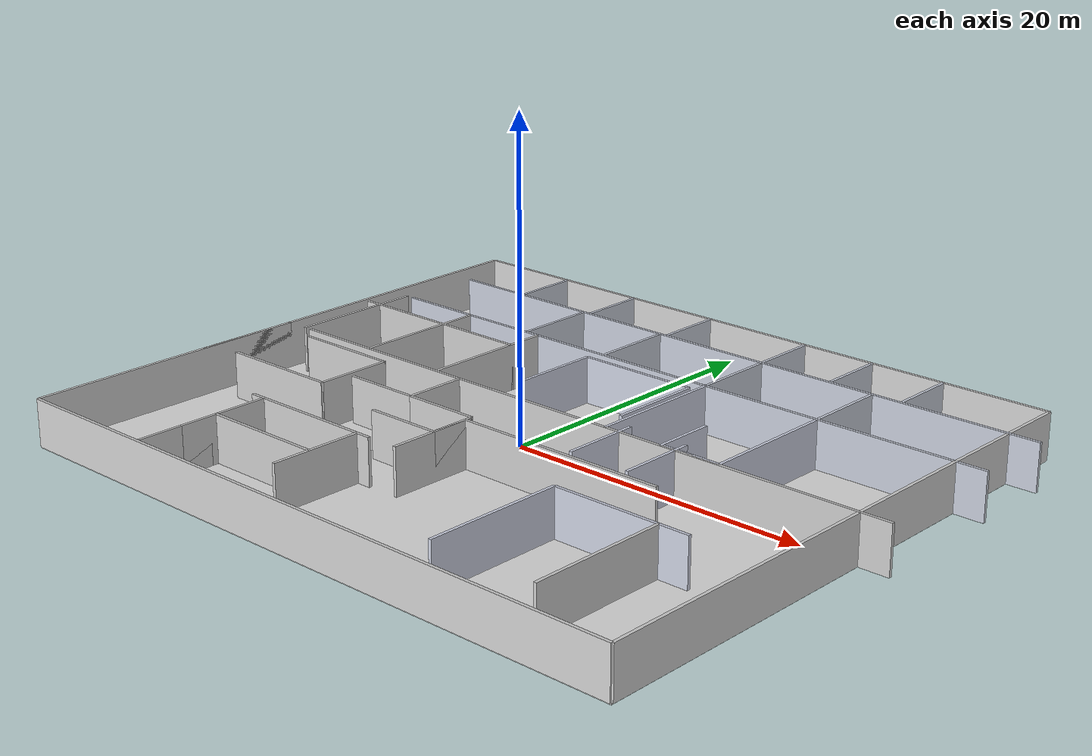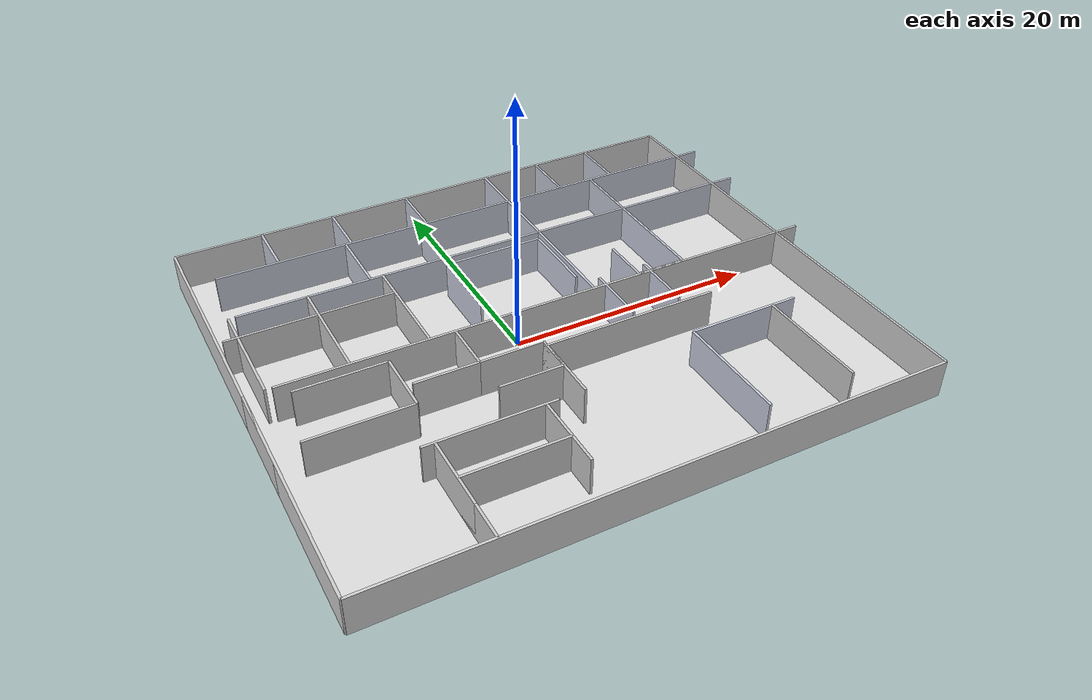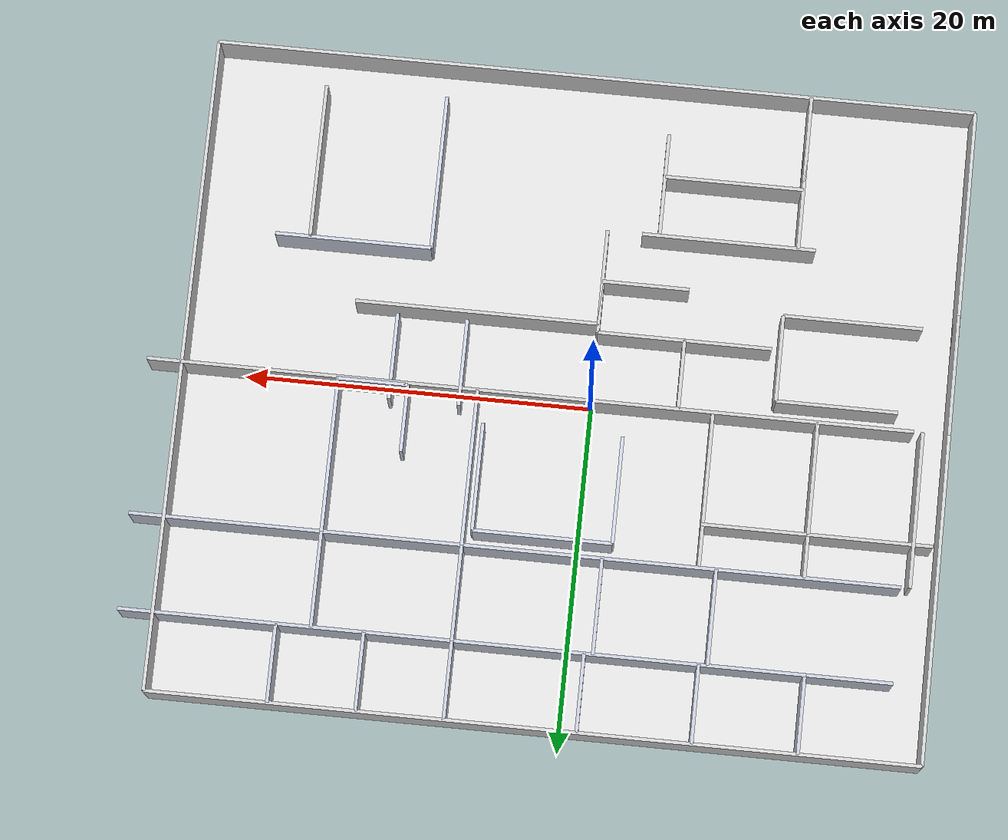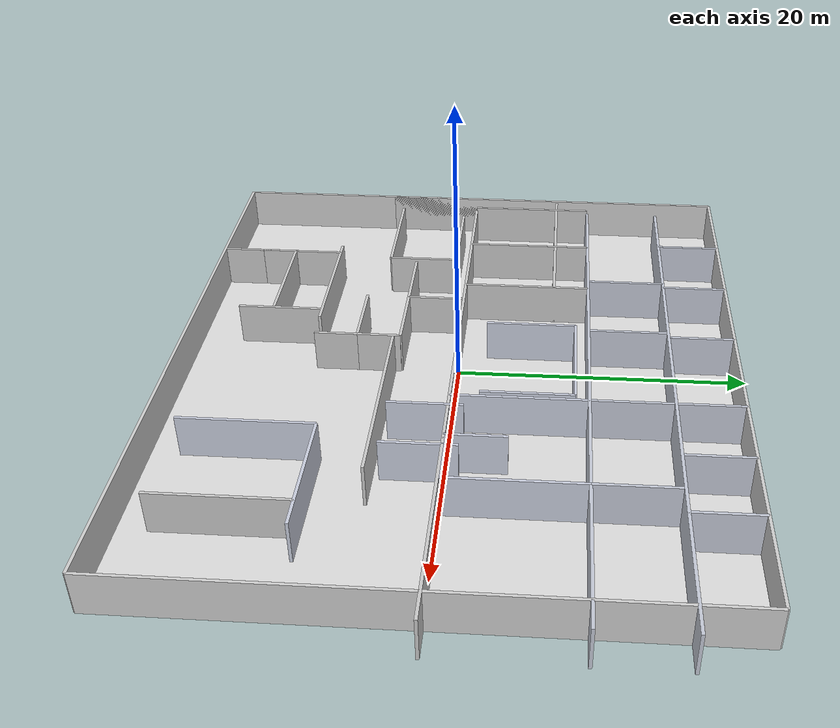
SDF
<?xml version="1.0"?>
<sdf version="1.6">
  <model name="hospital_building">
    <static>true</static>

    <link name="floor">
      <pose>1.5 0 -0.05 0 0 0</pose>
      <collision name="c"><geometry><box><size>44 38 0.1</size></box></geometry></collision>
      <visual name="v">
        <geometry><box><size>44 38 0.1</size></box></geometry>
        <material>
          <ambient>0.88 0.88 0.88 1</ambient>
          <diffuse>0.88 0.88 0.88 1</diffuse>
        </material>
      </visual>
    </link>

    <!-- ================================================================
         OUTER PERIMETER WALLS  (thickness=0.2, height=3.0)
         ================================================================ -->
    <!-- North wall -->
    <link name="wall_north">
      <pose>1.5 19.0 1.5 0 0 0</pose>
      <collision name="c"><geometry><box><size>44 0.2 3.0</size></box></geometry></collision>
      <visual name="v"><geometry><box><size>44 0.2 3.0</size></box></geometry>
        <material><ambient>0.82 0.82 0.82 1</ambient><diffuse>0.82 0.82 0.82 1</diffuse></material></visual>
    </link>
    <!-- South wall -->
    <link name="wall_south">
      <pose>1.5 -19.0 1.5 0 0 0</pose>
      <collision name="c"><geometry><box><size>44 0.2 3.0</size></box></geometry></collision>
      <visual name="v"><geometry><box><size>44 0.2 3.0</size></box></geometry>
        <material><ambient>0.82 0.82 0.82 1</ambient><diffuse>0.82 0.82 0.82 1</diffuse></material></visual>
    </link>
    <!-- East wall -->
    <link name="wall_east">
      <pose>23.5 0 1.5 0 0 0</pose>
      <collision name="c"><geometry><box><size>0.2 38 3.0</size></box></geometry></collision>
      <visual name="v"><geometry><box><size>0.2 38 3.0</size></box></geometry>
        <material><ambient>0.82 0.82 0.82 1</ambient><diffuse>0.82 0.82 0.82 1</diffuse></material></visual>
    </link>
    <!-- West wall -->
    <link name="wall_west">
      <pose>-20.5 0 1.5 0 0 0</pose>
      <collision name="c"><geometry><box><size>0.2 38 3.0</size></box></geometry></collision>
      <visual name="v"><geometry><box><size>0.2 38 3.0</size></box></geometry>
        <material><ambient>0.82 0.82 0.82 1</ambient><diffuse>0.82 0.82 0.82 1</diffuse></material></visual>
    </link>

    <!-- Clean core south wall (corridor between OR zone and mid zone) -->
    <link name="wall_clean_core_south">
      <pose>3.5 9.0 1.5 0 0 0</pose>
      <collision name="c"><geometry><box><size>44 0.2 3.0</size></box></geometry></collision>
      <visual name="v"><geometry><box><size>44 0.2 3.0</size></box></geometry>
        <material><ambient>0.78 0.80 0.85 1</ambient><diffuse>0.78 0.80 0.85 1</diffuse></material></visual>
    </link>

    <!-- Internal wall separating prep/clean core from OR corridor (y=14.5) -->
    <link name="wall_clean_core_internal">
      <pose>3.5 14.5 1.5 0 0 0</pose>
      <collision name="c"><geometry><box><size>44 0.2 3.0</size></box></geometry></collision>
      <visual name="v"><geometry><box><size>44 0.2 3.0</size></box></geometry>
        <material><ambient>0.78 0.80 0.85 1</ambient><diffuse>0.78 0.80 0.85 1</diffuse></material></visual>
    </link>

    <!-- Vertical partitions between OR rooms (x-separators in OR zone) -->
    <!-- Between OR1 and OR2 -->
    <link name="or_sep_1_2">
      <pose>-8.0 11.75 1.5 0 0 0</pose>
      <collision name="c"><geometry><box><size>0.2 5.5 3.0</size></box></geometry></collision>
      <visual name="v"><geometry><box><size>0.2 5.5 3.0</size></box></geometry>
        <material><ambient>0.78 0.80 0.85 1</ambient><diffuse>0.78 0.80 0.85 1</diffuse></material></visual>
    </link>
    <!-- Between OR2 and OR3 -->
    <link name="or_sep_2_3">
      <pose>-1.5 11.75 1.5 0 0 0</pose>
      <collision name="c"><geometry><box><size>0.2 5.5 3.0</size></box></geometry></collision>
      <visual name="v"><geometry><box><size>0.2 5.5 3.0</size></box></geometry>
        <material><ambient>0.78 0.80 0.85 1</ambient><diffuse>0.78 0.80 0.85 1</diffuse></material></visual>
    </link>
    <!-- Between OR3 and Endoscopy -->
    <link name="or_sep_3_endo">
      <pose>6.5 11.75 1.5 0 0 0</pose>
      <collision name="c"><geometry><box><size>0.2 5.5 3.0</size></box></geometry></collision>
      <visual name="v"><geometry><box><size>0.2 5.5 3.0</size></box></geometry>
        <material><ambient>0.78 0.80 0.85 1</ambient><diffuse>0.78 0.80 0.85 1</diffuse></material></visual>
    </link>
    <!-- Equipment storage east separator -->
    <link name="or_equip_sep">
      <pose>14.5 11.75 1.5 0 0 0</pose>
      <collision name="c"><geometry><box><size>0.2 5.5 3.0</size></box></geometry></collision>
      <visual name="v"><geometry><box><size>0.2 5.5 3.0</size></box></geometry>
        <material><ambient>0.78 0.80 0.85 1</ambient><diffuse>0.78 0.80 0.85 1</diffuse></material></visual>
    </link>

    <!-- Clean core north block internal separators (prep/pack, sterilize, storage) -->
    <link name="clean_sep1"><pose>-13.5 16.75 1.5 0 0 0</pose>
      <collision name="c"><geometry><box><size>0.2 4.5 3.0</size></box></geometry></collision>
      <visual name="v"><geometry><box><size>0.2 4.5 3.0</size></box></geometry>
        <material><ambient>0.78 0.80 0.85 1</ambient><diffuse>0.78 0.80 0.85 1</diffuse></material></visual>
    </link>
    <link name="clean_sep2"><pose>-7.5 16.75 1.5 0 0 0</pose>
      <collision name="c"><geometry><box><size>0.2 4.5 3.0</size></box></geometry></collision>
      <visual name="v"><geometry><box><size>0.2 4.5 3.0</size></box></geometry>
        <material><ambient>0.78 0.80 0.85 1</ambient><diffuse>0.78 0.80 0.85 1</diffuse></material></visual>
    </link>
    <link name="clean_sep3"><pose>-1.0 16.75 1.5 0 0 0</pose>
      <collision name="c"><geometry><box><size>0.2 4.5 3.0</size></box></geometry></collision>
      <visual name="v"><geometry><box><size>0.2 4.5 3.0</size></box></geometry>
        <material><ambient>0.78 0.80 0.85 1</ambient><diffuse>0.78 0.80 0.85 1</diffuse></material></visual>
    </link>
    <link name="clean_sep4"><pose>6.5 16.75 1.5 0 0 0</pose>
      <collision name="c"><geometry><box><size>0.2 4.5 3.0</size></box></geometry></collision>
      <visual name="v"><geometry><box><size>0.2 4.5 3.0</size></box></geometry>
        <material><ambient>0.78 0.80 0.85 1</ambient><diffuse>0.78 0.80 0.85 1</diffuse></material></visual>
    </link>
    <link name="clean_sep5"><pose>11.5 16.75 1.5 0 0 0</pose>
      <collision name="c"><geometry><box><size>0.2 4.5 3.0</size></box></geometry></collision>
      <visual name="v"><geometry><box><size>0.2 4.5 3.0</size></box></geometry>
        <material><ambient>0.78 0.80 0.85 1</ambient><diffuse>0.78 0.80 0.85 1</diffuse></material></visual>
    </link>
    <link name="clean_sep6"><pose>16.5 16.75 1.5 0 0 0</pose>
      <collision name="c"><geometry><box><size>0.2 4.5 3.0</size></box></geometry></collision>
      <visual name="v"><geometry><box><size>0.2 4.5 3.0</size></box></geometry>
        <material><ambient>0.78 0.80 0.85 1</ambient><diffuse>0.78 0.80 0.85 1</diffuse></material></visual>
    </link>

    <!-- Mid zone south wall (between mid and admin/waiting) -->
    <link name="wall_mid_south">
      <pose>3.5 0.0 1.5 0 0 0</pose>
      <collision name="c"><geometry><box><size>44 0.2 3.0</size></box></geometry></collision>
      <visual name="v"><geometry><box><size>44 0.2 3.0</size></box></geometry>
        <material><ambient>0.80 0.80 0.80 1</ambient><diffuse>0.80 0.80 0.80 1</diffuse></material></visual>
    </link>

    <!-- Locker/toilet separators west portion (x=-20.5 to x=-5) -->
    <link name="lock_sep1"><pose>-19.0 4.5 1.5 0 0 0</pose>
      <collision name="c"><geometry><box><size>0.2 9.0 3.0</size></box></geometry></collision>
      <visual name="v"><geometry><box><size>0.2 9.0 3.0</size></box></geometry>
        <material><ambient>0.80 0.80 0.80 1</ambient><diffuse>0.80 0.80 0.80 1</diffuse></material></visual>
    </link>
    <link name="lock_sep2"><pose>-13.0 4.5 1.5 0 0 0</pose>
      <collision name="c"><geometry><box><size>0.2 9.0 3.0</size></box></geometry></collision>
      <visual name="v"><geometry><box><size>0.2 9.0 3.0</size></box></geometry>
        <material><ambient>0.80 0.80 0.80 1</ambient><diffuse>0.80 0.80 0.80 1</diffuse></material></visual>
    </link>
    <link name="lock_sep3"><pose>-7.0 4.5 1.5 0 0 0</pose>
      <collision name="c"><geometry><box><size>0.2 9.0 3.0</size></box></geometry></collision>
      <visual name="v"><geometry><box><size>0.2 9.0 3.0</size></box></geometry>
        <material><ambient>0.80 0.80 0.80 1</ambient><diffuse>0.80 0.80 0.80 1</diffuse></material></visual>
    </link>
    <!-- Mid-zone horizontal separator (toilet row) -->
    <link name="lock_horiz"><pose>-13.5 6.5 1.5 0 0 0</pose>
      <collision name="c"><geometry><box><size>13.2 0.2 3.0</size></box></geometry></collision>
      <visual name="v"><geometry><box><size>13.2 0.2 3.0</size></box></geometry>
        <material><ambient>0.80 0.80 0.80 1</ambient><diffuse>0.80 0.80 0.80 1</diffuse></material></visual>
    </link>

    <!-- Pre-op Holding box (center approx x=2, y=5, size 8x6) -->
    <link name="preop_north"><pose>2.0 8.1 1.5 0 0 0</pose>
      <collision name="c"><geometry><box><size>8.0 0.2 3.0</size></box></geometry></collision>
      <visual name="v"><geometry><box><size>8.0 0.2 3.0</size></box></geometry>
        <material><ambient>0.80 0.82 0.88 1</ambient><diffuse>0.80 0.82 0.88 1</diffuse></material></visual>
    </link>
    <link name="preop_west"><pose>-2.0 5.0 1.5 0 0 0</pose>
      <collision name="c"><geometry><box><size>0.2 6.2 3.0</size></box></geometry></collision>
      <visual name="v"><geometry><box><size>0.2 6.2 3.0</size></box></geometry>
        <material><ambient>0.80 0.82 0.88 1</ambient><diffuse>0.80 0.82 0.88 1</diffuse></material></visual>
    </link>
    <link name="preop_east"><pose>6.0 5.0 1.5 0 0 0</pose>
      <collision name="c"><geometry><box><size>0.2 6.2 3.0</size></box></geometry></collision>
      <visual name="v"><geometry><box><size>0.2 6.2 3.0</size></box></geometry>
        <material><ambient>0.80 0.82 0.88 1</ambient><diffuse>0.80 0.82 0.88 1</diffuse></material></visual>
    </link>

    <!-- PACU zone east walls -->
    <link name="pacu_west"><pose>6.5 4.5 1.5 0 0 0</pose>
      <collision name="c"><geometry><box><size>0.2 9.0 3.0</size></box></geometry></collision>
      <visual name="v"><geometry><box><size>0.2 9.0 3.0</size></box></geometry>
        <material><ambient>0.80 0.82 0.88 1</ambient><diffuse>0.80 0.82 0.88 1</diffuse></material></visual>
    </link>
    <!-- Primary recovery east partition -->
    <link name="primary_rec_sep"><pose>14.5 4.5 1.5 0 0 0</pose>
      <collision name="c"><geometry><box><size>0.2 9.0 3.0</size></box></geometry></collision>
      <visual name="v"><geometry><box><size>0.2 9.0 3.0</size></box></geometry>
        <material><ambient>0.80 0.82 0.88 1</ambient><diffuse>0.80 0.82 0.88 1</diffuse></material></visual>
    </link>
    <!-- Pediatric/isolation separator -->
    <link name="pedi_sep"><pose>10.5 2.0 1.5 0 0 0</pose>
      <collision name="c"><geometry><box><size>0.2 4.0 3.0</size></box></geometry></collision>
      <visual name="v"><geometry><box><size>0.2 4.0 3.0</size></box></geometry>
        <material><ambient>0.80 0.82 0.88 1</ambient><diffuse>0.80 0.82 0.88 1</diffuse></material></visual>
    </link>
    <link name="pedi_horiz"><pose>12.5 0.1 1.5 0 0 0</pose>
      <collision name="c"><geometry><box><size>4.0 0.2 3.0</size></box></geometry></collision>
      <visual name="v"><geometry><box><size>4.0 0.2 3.0</size></box></geometry>
        <material><ambient>0.80 0.82 0.88 1</ambient><diffuse>0.80 0.82 0.88 1</diffuse></material></visual>
    </link>

    <!-- Conference room box -->
    <link name="conf_north"><pose>-14.0 -1.0 1.5 0 0 0</pose>
      <collision name="c"><geometry><box><size>7.0 0.2 3.0</size></box></geometry></collision>
      <visual name="v"><geometry><box><size>7.0 0.2 3.0</size></box></geometry>
        <material><ambient>0.80 0.80 0.80 1</ambient><diffuse>0.80 0.80 0.80 1</diffuse></material></visual>
    </link>
    <link name="conf_east"><pose>-10.5 -3.5 1.5 0 0 0</pose>
      <collision name="c"><geometry><box><size>0.2 5.0 3.0</size></box></geometry></collision>
      <visual name="v"><geometry><box><size>0.2 5.0 3.0</size></box></geometry>
        <material><ambient>0.80 0.80 0.80 1</ambient><diffuse>0.80 0.80 0.80 1</diffuse></material></visual>
    </link>
    <link name="conf_south"><pose>-14.5 -6.0 1.5 0 0 0</pose>
      <collision name="c"><geometry><box><size>8.0 0.2 3.0</size></box></geometry></collision>
      <visual name="v"><geometry><box><size>8.0 0.2 3.0</size></box></geometry>
        <material><ambient>0.80 0.80 0.80 1</ambient><diffuse>0.80 0.80 0.80 1</diffuse></material></visual>
    </link>

    <!-- Bulk storage partition -->
    <link name="bulk_sep"><pose>-5.0 -2.0 1.5 0 0 0</pose>
      <collision name="c"><geometry><box><size>0.2 4.0 3.0</size></box></geometry></collision>
      <visual name="v"><geometry><box><size>0.2 4.0 3.0</size></box></geometry>
        <material><ambient>0.80 0.80 0.80 1</ambient><diffuse>0.80 0.80 0.80 1</diffuse></material></visual>
    </link>
    <link name="bulk_south"><pose>-7.5 -4.0 1.5 0 0 0</pose>
      <collision name="c"><geometry><box><size>5.0 0.2 3.0</size></box></geometry></collision>
      <visual name="v"><geometry><box><size>5.0 0.2 3.0</size></box></geometry>
        <material><ambient>0.80 0.80 0.80 1</ambient><diffuse>0.80 0.80 0.80 1</diffuse></material></visual>
    </link>

    <!-- Dressing rooms partition -->
    <link name="dress_north"><pose>-2.5 -4.0 1.5 0 0 0</pose>
      <collision name="c"><geometry><box><size>5.0 0.2 3.0</size></box></geometry></collision>
      <visual name="v"><geometry><box><size>5.0 0.2 3.0</size></box></geometry>
        <material><ambient>0.80 0.80 0.80 1</ambient><diffuse>0.80 0.80 0.80 1</diffuse></material></visual>
    </link>
    <link name="dress_east"><pose>0.0 -5.5 1.5 0 0 0</pose>
      <collision name="c"><geometry><box><size>0.2 3.0 3.0</size></box></geometry></collision>
      <visual name="v"><geometry><box><size>0.2 3.0 3.0</size></box></geometry>
        <material><ambient>0.80 0.80 0.80 1</ambient><diffuse>0.80 0.80 0.80 1</diffuse></material></visual>
    </link>
    <link name="dress_south"><pose>-2.5 -7.0 1.5 0 0 0</pose>
      <collision name="c"><geometry><box><size>5.0 0.2 3.0</size></box></geometry></collision>
      <visual name="v"><geometry><box><size>5.0 0.2 3.0</size></box></geometry>
        <material><ambient>0.80 0.80 0.80 1</ambient><diffuse>0.80 0.80 0.80 1</diffuse></material></visual>
    </link>

    <!-- Admitting / Waiting divider -->
    <link name="admit_waiting_sep"><pose>0.0 -7.0 1.5 0 0 0</pose>
      <collision name="c"><geometry><box><size>0.2 6.0 3.0</size></box></geometry></collision>
      <visual name="v"><geometry><box><size>0.2 6.0 3.0</size></box></geometry>
        <material><ambient>0.80 0.80 0.80 1</ambient><diffuse>0.80 0.80 0.80 1</diffuse></material></visual>
    </link>

    <!-- Waiting room north wall -->
    <link name="waiting_north"><pose>7.0 -4.5 1.5 0 0 0</pose>
      <collision name="c"><geometry><box><size>14.0 0.2 3.0</size></box></geometry></collision>
      <visual name="v"><geometry><box><size>14.0 0.2 3.0</size></box></geometry>
        <material><ambient>0.80 0.80 0.80 1</ambient><diffuse>0.80 0.80 0.80 1</diffuse></material></visual>
    </link>

    <!-- Nurse station / med prep area partition -->
    <link name="nursestat_sep"><pose>7.5 -1.5 1.5 0 0 0</pose>
      <collision name="c"><geometry><box><size>0.2 5.0 3.0</size></box></geometry></collision>
      <visual name="v"><geometry><box><size>0.2 5.0 3.0</size></box></geometry>
        <material><ambient>0.80 0.82 0.88 1</ambient><diffuse>0.80 0.82 0.88 1</diffuse></material></visual>
    </link>
    <link name="medprep_sep"><pose>11.5 -1.5 1.5 0 0 0</pose>
      <collision name="c"><geometry><box><size>0.2 5.0 3.0</size></box></geometry></collision>
      <visual name="v"><geometry><box><size>0.2 5.0 3.0</size></box></geometry>
        <material><ambient>0.80 0.82 0.88 1</ambient><diffuse>0.80 0.82 0.88 1</diffuse></material></visual>
    </link>

    <!-- Recovery south block -->
    <link name="sec_rec_north"><pose>14.5 -8.0 1.5 0 0 0</pose>
      <collision name="c"><geometry><box><size>9.0 0.2 3.0</size></box></geometry></collision>
      <visual name="v"><geometry><box><size>9.0 0.2 3.0</size></box></geometry>
        <material><ambient>0.80 0.82 0.88 1</ambient><diffuse>0.80 0.82 0.88 1</diffuse></material></visual>
    </link>
    <link name="sec_rec_west"><pose>10.0 -12.5 1.5 0 0 0</pose>
      <collision name="c"><geometry><box><size>0.2 9.0 3.0</size></box></geometry></collision>
      <visual name="v"><geometry><box><size>0.2 9.0 3.0</size></box></geometry>
        <material><ambient>0.80 0.82 0.88 1</ambient><diffuse>0.80 0.82 0.88 1</diffuse></material></visual>
    </link>
    <link name="stretcher_sep"><pose>17.0 -12.5 1.5 0 0 0</pose>
      <collision name="c"><geometry><box><size>0.2 9.0 3.0</size></box></geometry></collision>
      <visual name="v"><geometry><box><size>0.2 9.0 3.0</size></box></geometry>
        <material><ambient>0.80 0.80 0.80 1</ambient><diffuse>0.80 0.80 0.80 1</diffuse></material></visual>
    </link>

    <!-- Reception / records / admin south block walls -->
    <link name="admin_north"><pose>-7.0 -10.0 1.5 0 0 0</pose>
      <collision name="c"><geometry><box><size>10.0 0.2 3.0</size></box></geometry></collision>
      <visual name="v"><geometry><box><size>10.0 0.2 3.0</size></box></geometry>
        <material><ambient>0.80 0.80 0.80 1</ambient><diffuse>0.80 0.80 0.80 1</diffuse></material></visual>
    </link>
    <link name="admin_sep1"><pose>-11.0 -13.0 1.5 0 0 0</pose>
      <collision name="c"><geometry><box><size>0.2 6.0 3.0</size></box></geometry></collision>
      <visual name="v"><geometry><box><size>0.2 6.0 3.0</size></box></geometry>
        <material><ambient>0.80 0.80 0.80 1</ambient><diffuse>0.80 0.80 0.80 1</diffuse></material></visual>
    </link>
    <link name="admin_sep2"><pose>-3.0 -13.0 1.5 0 0 0</pose>
      <collision name="c"><geometry><box><size>0.2 6.0 3.0</size></box></geometry></collision>
      <visual name="v"><geometry><box><size>0.2 6.0 3.0</size></box></geometry>
        <material><ambient>0.80 0.80 0.80 1</ambient><diffuse>0.80 0.80 0.80 1</diffuse></material></visual>
    </link>
    <link name="admin_horiz"><pose>-7.0 -13.5 1.5 0 0 0</pose>
      <collision name="c"><geometry><box><size>8.0 0.2 3.0</size></box></geometry></collision>
      <visual name="v"><geometry><box><size>8.0 0.2 3.0</size></box></geometry>
        <material><ambient>0.80 0.80 0.80 1</ambient><diffuse>0.80 0.80 0.80 1</diffuse></material></visual>
    </link>
    <link name="dir_nurses_sep"><pose>-11.0 -16.5 1.5 0 0 0</pose>
      <collision name="c"><geometry><box><size>0.2 5.0 3.0</size></box></geometry></collision>
      <visual name="v"><geometry><box><size>0.2 5.0 3.0</size></box></geometry>
        <material><ambient>0.80 0.80 0.80 1</ambient><diffuse>0.80 0.80 0.80 1</diffuse></material></visual>
    </link>

    <!-- Staff entrance corridor wall -->
    <link name="staff_ent_wall"><pose>-20.5 -3.5 1.5 0 0 0</pose>
      <collision name="c"><geometry><box><size>0.2 7.0 3.0</size></box></geometry></collision>
      <visual name="v"><geometry><box><size>0.2 7.0 3.0</size></box></geometry>
        <material><ambient>0.80 0.80 0.80 1</ambient><diffuse>0.80 0.80 0.80 1</diffuse></material></visual>
    </link>

  </model>
</sdf>
